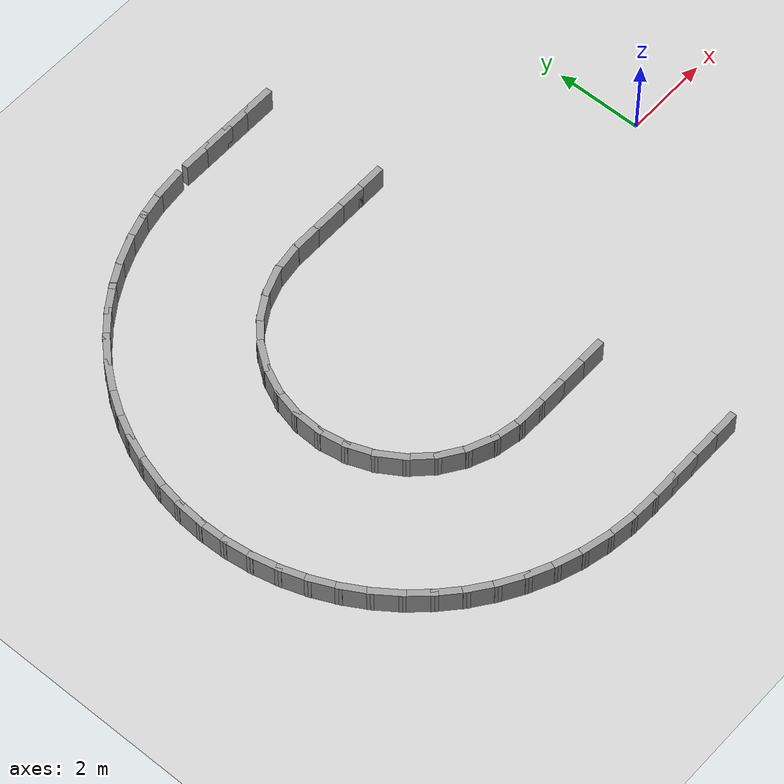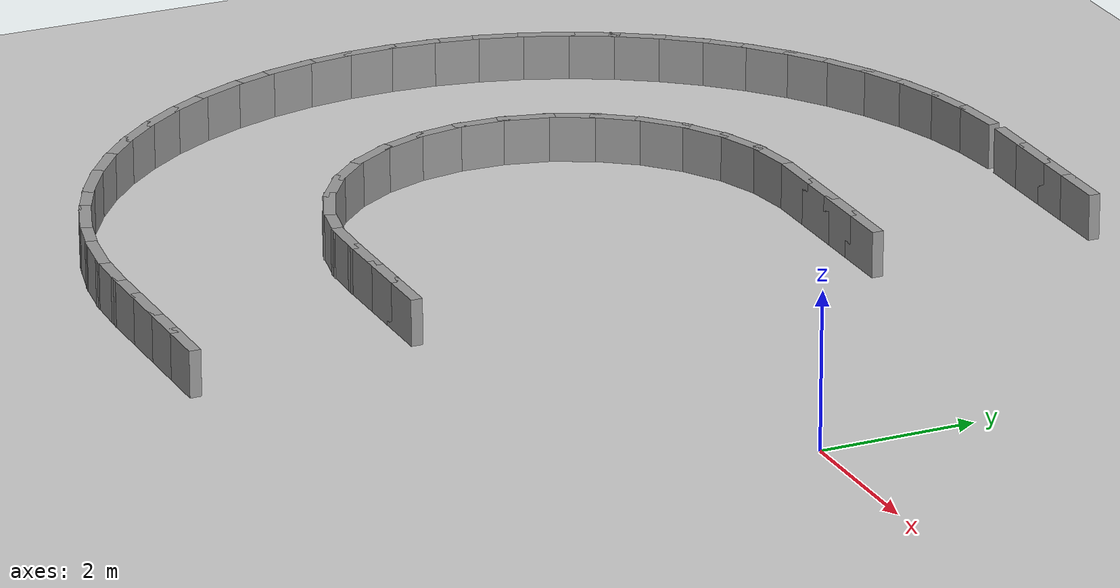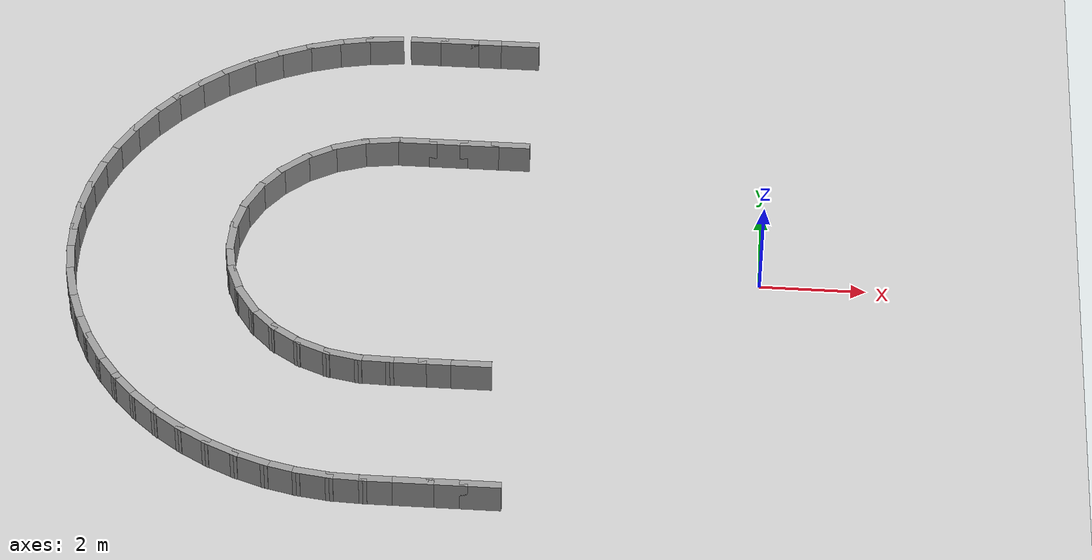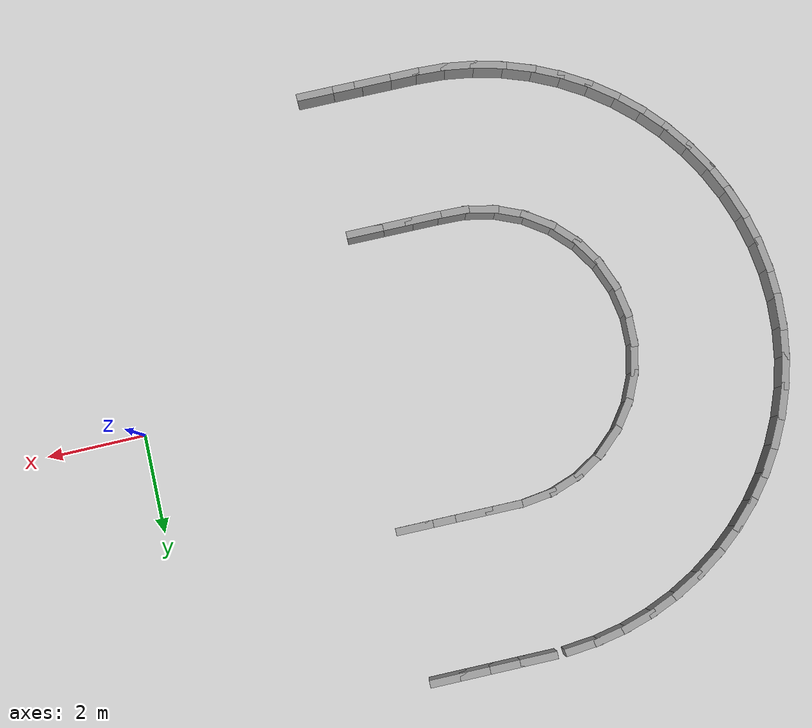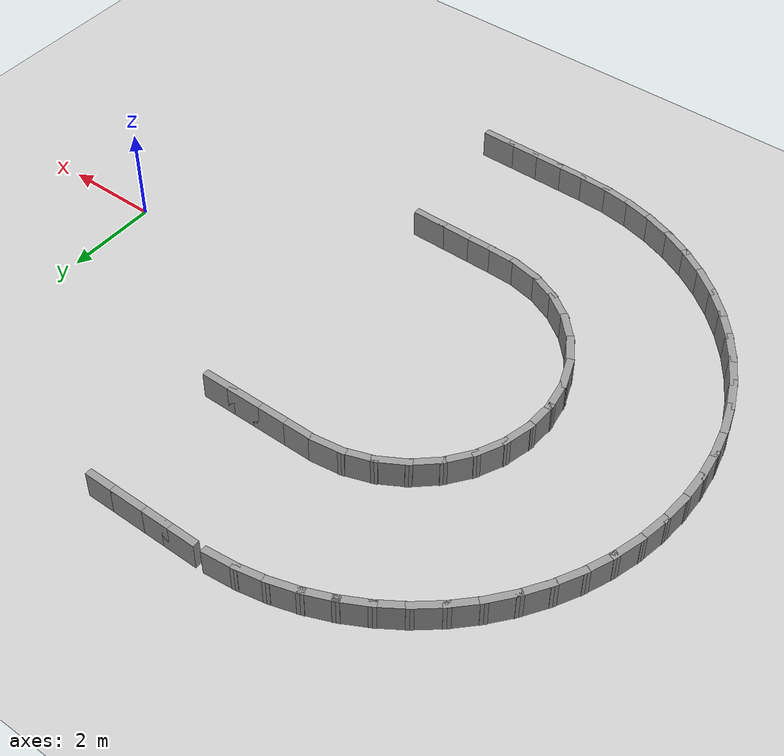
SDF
<sdf version="1.7">
 <world name="default">
  <model name="ground_plane">
   <static>1</static>
   <link name="link">
    <collision name="collision">
     <geometry><plane><normal>0 0 1</normal><size>100 100</size></plane></geometry>
     <surface><friction><ode><mu>100</mu><mu2>50</mu2></ode></friction></surface>
    </collision>
    <visual name="visual">
     <cast_shadows>0</cast_shadows>
     <geometry><plane><normal>0 0 1</normal><size>100 100</size></plane></geometry>
     <material>
      <script><uri>file://media/materials/scripts/gazebo.material</uri><name>Gazebo/Grey</name></script>
     </material>
    </visual>
   </link>
  </model>
  <model name="campus_loop">
   <link name="Wall_0">
    <collision name="Wall_0_Collision">
     <geometry><box><size>0.7500 0.1500 0.6000</size></box></geometry>
     <pose>0 0 0.3000 0 -0 0</pose>
    </collision>
    <visual name="Wall_0_Visual">
     <pose>0 0 0.3000 0 -0 0</pose>
     <geometry><box><size>0.7500 0.1500 0.6000</size></box></geometry>
     <material>
      <script><uri>file://media/materials/scripts/gazebo.material</uri><name>Gazebo/Grey</name></script>
      <ambient>1 1 1 1</ambient>
     </material>
    </visual>
    <pose>-6.7000 6.0000 0 0 -0 0.00000</pose>
   </link>
   <link name="Wall_1">
    <collision name="Wall_1_Collision">
     <geometry><box><size>0.7500 0.1500 0.6000</size></box></geometry>
     <pose>0 0 0.3000 0 -0 0</pose>
    </collision>
    <visual name="Wall_1_Visual">
     <pose>0 0 0.3000 0 -0 0</pose>
     <geometry><box><size>0.7500 0.1500 0.6000</size></box></geometry>
     <material>
      <script><uri>file://media/materials/scripts/gazebo.material</uri><name>Gazebo/Grey</name></script>
      <ambient>1 1 1 1</ambient>
     </material>
    </visual>
    <pose>-6.1000 6.0000 0 0 -0 0.00000</pose>
   </link>
   <link name="Wall_2">
    <collision name="Wall_2_Collision">
     <geometry><box><size>0.7500 0.1500 0.6000</size></box></geometry>
     <pose>0 0 0.3000 0 -0 0</pose>
    </collision>
    <visual name="Wall_2_Visual">
     <pose>0 0 0.3000 0 -0 0</pose>
     <geometry><box><size>0.7500 0.1500 0.6000</size></box></geometry>
     <material>
      <script><uri>file://media/materials/scripts/gazebo.material</uri><name>Gazebo/Grey</name></script>
      <ambient>1 1 1 1</ambient>
     </material>
    </visual>
    <pose>-5.5000 6.0000 0 0 -0 0.00000</pose>
   </link>
   <link name="Wall_3">
    <collision name="Wall_3_Collision">
     <geometry><box><size>0.7500 0.1500 0.6000</size></box></geometry>
     <pose>0 0 0.3000 0 -0 0</pose>
    </collision>
    <visual name="Wall_3_Visual">
     <pose>0 0 0.3000 0 -0 0</pose>
     <geometry><box><size>0.7500 0.1500 0.6000</size></box></geometry>
     <material>
      <script><uri>file://media/materials/scripts/gazebo.material</uri><name>Gazebo/Grey</name></script>
      <ambient>1 1 1 1</ambient>
     </material>
    </visual>
    <pose>-4.9000 6.0000 0 0 -0 0.00000</pose>
   </link>
   <link name="Wall_74">
    <collision name="Wall_74_Collision">
     <geometry><box><size>0.7500 0.1500 0.6000</size></box></geometry>
     <pose>0 0 0.3000 0 -0 0</pose>
    </collision>
    <visual name="Wall_74_Visual">
     <pose>0 0 0.3000 0 -0 0</pose>
     <geometry><box><size>0.7500 0.1500 0.6000</size></box></geometry>
     <material>
      <script><uri>file://media/materials/scripts/gazebo.material</uri><name>Gazebo/Grey</name></script>
      <ambient>1 1 1 1</ambient>
     </material>
    </visual>
    <pose>-4.8506 -6.0000 0 0 -0 3.14159</pose>
   </link>
   <link name="Wall_75">
    <collision name="Wall_75_Collision">
     <geometry><box><size>0.7500 0.1500 0.6000</size></box></geometry>
     <pose>0 0 0.3000 0 -0 0</pose>
    </collision>
    <visual name="Wall_75_Visual">
     <pose>0 0 0.3000 0 -0 0</pose>
     <geometry><box><size>0.7500 0.1500 0.6000</size></box></geometry>
     <material>
      <script><uri>file://media/materials/scripts/gazebo.material</uri><name>Gazebo/Grey</name></script>
      <ambient>1 1 1 1</ambient>
     </material>
    </visual>
    <pose>-5.4506 -6.0000 0 0 -0 3.14159</pose>
   </link>
   <link name="Wall_76">
    <collision name="Wall_76_Collision">
     <geometry><box><size>0.7500 0.1500 0.6000</size></box></geometry>
     <pose>0 0 0.3000 0 -0 0</pose>
    </collision>
    <visual name="Wall_76_Visual">
     <pose>0 0 0.3000 0 -0 0</pose>
     <geometry><box><size>0.7500 0.1500 0.6000</size></box></geometry>
     <material>
      <script><uri>file://media/materials/scripts/gazebo.material</uri><name>Gazebo/Grey</name></script>
      <ambient>1 1 1 1</ambient>
     </material>
    </visual>
    <pose>-6.0506 -6.0000 0 0 -0 3.14159</pose>
   </link>
   <link name="Wall_77">
    <collision name="Wall_77_Collision">
     <geometry><box><size>0.7500 0.1500 0.6000</size></box></geometry>
     <pose>0 0 0.3000 0 -0 0</pose>
    </collision>
    <visual name="Wall_77_Visual">
     <pose>0 0 0.3000 0 -0 0</pose>
     <geometry><box><size>0.7500 0.1500 0.6000</size></box></geometry>
     <material>
      <script><uri>file://media/materials/scripts/gazebo.material</uri><name>Gazebo/Grey</name></script>
      <ambient>1 1 1 1</ambient>
     </material>
    </visual>
    <pose>-6.6506 -6.0000 0 0 -0 3.14159</pose>
   </link>
   <link name="Wall_78">
    <collision name="Wall_78_Collision">
     <geometry><box><size>0.7498 0.1500 0.6000</size></box></geometry>
     <pose>0 0 0.3000 0 -0 0</pose>
    </collision>
    <visual name="Wall_78_Visual">
     <pose>0 0 0.3000 0 -0 0</pose>
     <geometry><box><size>0.7498 0.1500 0.6000</size></box></geometry>
     <material>
      <script><uri>file://media/materials/scripts/gazebo.material</uri><name>Gazebo/Grey</name></script>
      <ambient>1 1 1 1</ambient>
     </material>
    </visual>
    <pose>-7.2503 -5.9873 0 0 -0 3.09929</pose>
   </link>
   <link name="Wall_79">
    <collision name="Wall_79_Collision">
     <geometry><box><size>0.7497 0.1500 0.6000</size></box></geometry>
     <pose>0 0 0.3000 0 -0 0</pose>
    </collision>
    <visual name="Wall_79_Visual">
     <pose>0 0 0.3000 0 -0 0</pose>
     <geometry><box><size>0.7497 0.1500 0.6000</size></box></geometry>
     <material>
      <script><uri>file://media/materials/scripts/gazebo.material</uri><name>Gazebo/Grey</name></script>
      <ambient>1 1 1 1</ambient>
     </material>
    </visual>
    <pose>-7.8467 -5.9323 0 0 -0 2.99985</pose>
   </link>
   <link name="Wall_80">
    <collision name="Wall_80_Collision">
     <geometry><box><size>0.7497 0.1500 0.6000</size></box></geometry>
     <pose>0 0 0.3000 0 -0 0</pose>
    </collision>
    <visual name="Wall_80_Visual">
     <pose>0 0 0.3000 0 -0 0</pose>
     <geometry><box><size>0.7497 0.1500 0.6000</size></box></geometry>
     <material>
      <script><uri>file://media/materials/scripts/gazebo.material</uri><name>Gazebo/Grey</name></script>
      <ambient>1 1 1 1</ambient>
     </material>
    </visual>
    <pose>-8.4347 -5.8181 0 0 -0 2.89966</pose>
   </link>
   <link name="Wall_81">
    <collision name="Wall_81_Collision">
     <geometry><box><size>0.7497 0.1500 0.6000</size></box></geometry>
     <pose>0 0 0.3000 0 -0 0</pose>
    </collision>
    <visual name="Wall_81_Visual">
     <pose>0 0 0.3000 0 -0 0</pose>
     <geometry><box><size>0.7497 0.1500 0.6000</size></box></geometry>
     <material>
      <script><uri>file://media/materials/scripts/gazebo.material</uri><name>Gazebo/Grey</name></script>
      <ambient>1 1 1 1</ambient>
     </material>
    </visual>
    <pose>-9.0084 -5.6458 0 0 -0 2.79994</pose>
   </link>
   <link name="Wall_82">
    <collision name="Wall_82_Collision">
     <geometry><box><size>0.7497 0.1500 0.6000</size></box></geometry>
     <pose>0 0 0.3000 0 -0 0</pose>
    </collision>
    <visual name="Wall_82_Visual">
     <pose>0 0 0.3000 0 -0 0</pose>
     <geometry><box><size>0.7497 0.1500 0.6000</size></box></geometry>
     <material>
      <script><uri>file://media/materials/scripts/gazebo.material</uri><name>Gazebo/Grey</name></script>
      <ambient>1 1 1 1</ambient>
     </material>
    </visual>
    <pose>-9.5620 -5.4171 0 0 -0 2.69984</pose>
   </link>
   <link name="Wall_83">
    <collision name="Wall_83_Collision">
     <geometry><box><size>0.7497 0.1500 0.6000</size></box></geometry>
     <pose>0 0 0.3000 0 -0 0</pose>
    </collision>
    <visual name="Wall_83_Visual">
     <pose>0 0 0.3000 0 -0 0</pose>
     <geometry><box><size>0.7497 0.1500 0.6000</size></box></geometry>
     <material>
      <script><uri>file://media/materials/scripts/gazebo.material</uri><name>Gazebo/Grey</name></script>
      <ambient>1 1 1 1</ambient>
     </material>
    </visual>
    <pose>-10.0900 -5.1342 0 0 -0 2.59966</pose>
   </link>
   <link name="Wall_84">
    <collision name="Wall_84_Collision">
     <geometry><box><size>0.7497 0.1500 0.6000</size></box></geometry>
     <pose>0 0 0.3000 0 -0 0</pose>
    </collision>
    <visual name="Wall_84_Visual">
     <pose>0 0 0.3000 0 -0 0</pose>
     <geometry><box><size>0.7497 0.1500 0.6000</size></box></geometry>
     <material>
      <script><uri>file://media/materials/scripts/gazebo.material</uri><name>Gazebo/Grey</name></script>
      <ambient>1 1 1 1</ambient>
     </material>
    </visual>
    <pose>-10.5872 -4.8001 0 0 -0 2.49994</pose>
   </link>
   <link name="Wall_85">
    <collision name="Wall_85_Collision">
     <geometry><box><size>0.7497 0.1500 0.6000</size></box></geometry>
     <pose>0 0 0.3000 0 -0 0</pose>
    </collision>
    <visual name="Wall_85_Visual">
     <pose>0 0 0.3000 0 -0 0</pose>
     <geometry><box><size>0.7497 0.1500 0.6000</size></box></geometry>
     <material>
      <script><uri>file://media/materials/scripts/gazebo.material</uri><name>Gazebo/Grey</name></script>
      <ambient>1 1 1 1</ambient>
     </material>
    </visual>
    <pose>-11.0485 -4.4180 0 0 -0 2.39983</pose>
   </link>
   <link name="Wall_86">
    <collision name="Wall_86_Collision">
     <geometry><box><size>0.7497 0.1500 0.6000</size></box></geometry>
     <pose>0 0 0.3000 0 -0 0</pose>
    </collision>
    <visual name="Wall_86_Visual">
     <pose>0 0 0.3000 0 -0 0</pose>
     <geometry><box><size>0.7497 0.1500 0.6000</size></box></geometry>
     <material>
      <script><uri>file://media/materials/scripts/gazebo.material</uri><name>Gazebo/Grey</name></script>
      <ambient>1 1 1 1</ambient>
     </material>
    </visual>
    <pose>-11.4693 -3.9917 0 0 -0 2.29966</pose>
   </link>
   <link name="Wall_87">
    <collision name="Wall_87_Collision">
     <geometry><box><size>0.7497 0.1500 0.6000</size></box></geometry>
     <pose>0 0 0.3000 0 -0 0</pose>
    </collision>
    <visual name="Wall_87_Visual">
     <pose>0 0 0.3000 0 -0 0</pose>
     <geometry><box><size>0.7497 0.1500 0.6000</size></box></geometry>
     <material>
      <script><uri>file://media/materials/scripts/gazebo.material</uri><name>Gazebo/Grey</name></script>
      <ambient>1 1 1 1</ambient>
     </material>
    </visual>
    <pose>-11.8455 -3.5256 0 0 -0 2.19994</pose>
   </link>
   <link name="Wall_88">
    <collision name="Wall_88_Collision">
     <geometry><box><size>0.7497 0.1500 0.6000</size></box></geometry>
     <pose>0 0 0.3000 0 -0 0</pose>
    </collision>
    <visual name="Wall_88_Visual">
     <pose>0 0 0.3000 0 -0 0</pose>
     <geometry><box><size>0.7497 0.1500 0.6000</size></box></geometry>
     <material>
      <script><uri>file://media/materials/scripts/gazebo.material</uri><name>Gazebo/Grey</name></script>
      <ambient>1 1 1 1</ambient>
     </material>
    </visual>
    <pose>-12.1733 -3.0242 0 0 -0 2.09982</pose>
   </link>
   <link name="Wall_89">
    <collision name="Wall_89_Collision">
     <geometry><box><size>0.7497 0.1500 0.6000</size></box></geometry>
     <pose>0 0 0.3000 0 -0 0</pose>
    </collision>
    <visual name="Wall_89_Visual">
     <pose>0 0 0.3000 0 -0 0</pose>
     <geometry><box><size>0.7497 0.1500 0.6000</size></box></geometry>
     <material>
      <script><uri>file://media/materials/scripts/gazebo.material</uri><name>Gazebo/Grey</name></script>
      <ambient>1 1 1 1</ambient>
     </material>
    </visual>
    <pose>-12.4493 -2.4927 0 0 -0 1.99966</pose>
   </link>
   <link name="Wall_90">
    <collision name="Wall_90_Collision">
     <geometry><box><size>0.7497 0.1500 0.6000</size></box></geometry>
     <pose>0 0 0.3000 0 -0 0</pose>
    </collision>
    <visual name="Wall_90_Visual">
     <pose>0 0 0.3000 0 -0 0</pose>
     <geometry><box><size>0.7497 0.1500 0.6000</size></box></geometry>
     <material>
      <script><uri>file://media/materials/scripts/gazebo.material</uri><name>Gazebo/Grey</name></script>
      <ambient>1 1 1 1</ambient>
     </material>
    </visual>
    <pose>-12.6709 -1.9362 0 0 -0 1.89994</pose>
   </link>
   <link name="Wall_91">
    <collision name="Wall_91_Collision">
     <geometry><box><size>0.7497 0.1500 0.6000</size></box></geometry>
     <pose>0 0 0.3000 0 -0 0</pose>
    </collision>
    <visual name="Wall_91_Visual">
     <pose>0 0 0.3000 0 -0 0</pose>
     <geometry><box><size>0.7497 0.1500 0.6000</size></box></geometry>
     <material>
      <script><uri>file://media/materials/scripts/gazebo.material</uri><name>Gazebo/Grey</name></script>
      <ambient>1 1 1 1</ambient>
     </material>
    </visual>
    <pose>-12.8359 -1.3603 0 0 -0 1.79982</pose>
   </link>
   <link name="Wall_92">
    <collision name="Wall_92_Collision">
     <geometry><box><size>0.7497 0.1500 0.6000</size></box></geometry>
     <pose>0 0 0.3000 0 -0 0</pose>
    </collision>
    <visual name="Wall_92_Visual">
     <pose>0 0 0.3000 0 -0 0</pose>
     <geometry><box><size>0.7497 0.1500 0.6000</size></box></geometry>
     <material>
      <script><uri>file://media/materials/scripts/gazebo.material</uri><name>Gazebo/Grey</name></script>
      <ambient>1 1 1 1</ambient>
     </material>
    </visual>
    <pose>-12.9426 -0.7709 0 0 -0 1.69966</pose>
   </link>
   <link name="Wall_93">
    <collision name="Wall_93_Collision">
     <geometry><box><size>0.7497 0.1500 0.6000</size></box></geometry>
     <pose>0 0 0.3000 0 -0 0</pose>
    </collision>
    <visual name="Wall_93_Visual">
     <pose>0 0 0.3000 0 -0 0</pose>
     <geometry><box><size>0.7497 0.1500 0.6000</size></box></geometry>
     <material>
      <script><uri>file://media/materials/scripts/gazebo.material</uri><name>Gazebo/Grey</name></script>
      <ambient>1 1 1 1</ambient>
     </material>
    </visual>
    <pose>-12.9898 -0.1738 0 0 -0 1.59994</pose>
   </link>
   <link name="Wall_94">
    <collision name="Wall_94_Collision">
     <geometry><box><size>0.7497 0.1500 0.6000</size></box></geometry>
     <pose>0 0 0.3000 0 -0 0</pose>
    </collision>
    <visual name="Wall_94_Visual">
     <pose>0 0 0.3000 0 -0 0</pose>
     <geometry><box><size>0.7497 0.1500 0.6000</size></box></geometry>
     <material>
      <script><uri>file://media/materials/scripts/gazebo.material</uri><name>Gazebo/Grey</name></script>
      <ambient>1 1 1 1</ambient>
     </material>
    </visual>
    <pose>-12.9773 0.4251 0 0 -0 1.49981</pose>
   </link>
   <link name="Wall_95">
    <collision name="Wall_95_Collision">
     <geometry><box><size>0.7497 0.1500 0.6000</size></box></geometry>
     <pose>0 0 0.3000 0 -0 0</pose>
    </collision>
    <visual name="Wall_95_Visual">
     <pose>0 0 0.3000 0 -0 0</pose>
     <geometry><box><size>0.7497 0.1500 0.6000</size></box></geometry>
     <material>
      <script><uri>file://media/materials/scripts/gazebo.material</uri><name>Gazebo/Grey</name></script>
      <ambient>1 1 1 1</ambient>
     </material>
    </visual>
    <pose>-12.9050 1.0197 0 0 -0 1.39966</pose>
   </link>
   <link name="Wall_96">
    <collision name="Wall_96_Collision">
     <geometry><box><size>0.7497 0.1500 0.6000</size></box></geometry>
     <pose>0 0 0.3000 0 -0 0</pose>
    </collision>
    <visual name="Wall_96_Visual">
     <pose>0 0 0.3000 0 -0 0</pose>
     <geometry><box><size>0.7497 0.1500 0.6000</size></box></geometry>
     <material>
      <script><uri>file://media/materials/scripts/gazebo.material</uri><name>Gazebo/Grey</name></script>
      <ambient>1 1 1 1</ambient>
     </material>
    </visual>
    <pose>-12.7737 1.6041 0 0 -0 1.29994</pose>
   </link>
   <link name="Wall_97">
    <collision name="Wall_97_Collision">
     <geometry><box><size>0.7497 0.1500 0.6000</size></box></geometry>
     <pose>0 0 0.3000 0 -0 0</pose>
    </collision>
    <visual name="Wall_97_Visual">
     <pose>0 0 0.3000 0 -0 0</pose>
     <geometry><box><size>0.7497 0.1500 0.6000</size></box></geometry>
     <material>
      <script><uri>file://media/materials/scripts/gazebo.material</uri><name>Gazebo/Grey</name></script>
      <ambient>1 1 1 1</ambient>
     </material>
    </visual>
    <pose>-12.5847 2.1725 0 0 -0 1.19980</pose>
   </link>
   <link name="Wall_98">
    <collision name="Wall_98_Collision">
     <geometry><box><size>0.7497 0.1500 0.6000</size></box></geometry>
     <pose>0 0 0.3000 0 -0 0</pose>
    </collision>
    <visual name="Wall_98_Visual">
     <pose>0 0 0.3000 0 -0 0</pose>
     <geometry><box><size>0.7497 0.1500 0.6000</size></box></geometry>
     <material>
      <script><uri>file://media/materials/scripts/gazebo.material</uri><name>Gazebo/Grey</name></script>
      <ambient>1 1 1 1</ambient>
     </material>
    </visual>
    <pose>-12.3399 2.7192 0 0 -0 1.09966</pose>
   </link>
   <link name="Wall_99">
    <collision name="Wall_99_Collision">
     <geometry><box><size>0.7497 0.1500 0.6000</size></box></geometry>
     <pose>0 0 0.3000 0 -0 0</pose>
    </collision>
    <visual name="Wall_99_Visual">
     <pose>0 0 0.3000 0 -0 0</pose>
     <geometry><box><size>0.7497 0.1500 0.6000</size></box></geometry>
     <material>
      <script><uri>file://media/materials/scripts/gazebo.material</uri><name>Gazebo/Grey</name></script>
      <ambient>1 1 1 1</ambient>
     </material>
    </visual>
    <pose>-12.0417 3.2387 0 0 -0 0.99994</pose>
   </link>
   <link name="Wall_100">
    <collision name="Wall_100_Collision">
     <geometry><box><size>0.7497 0.1500 0.6000</size></box></geometry>
     <pose>0 0 0.3000 0 -0 0</pose>
    </collision>
    <visual name="Wall_100_Visual">
     <pose>0 0 0.3000 0 -0 0</pose>
     <geometry><box><size>0.7497 0.1500 0.6000</size></box></geometry>
     <material>
      <script><uri>file://media/materials/scripts/gazebo.material</uri><name>Gazebo/Grey</name></script>
      <ambient>1 1 1 1</ambient>
     </material>
    </visual>
    <pose>-11.6932 3.7259 0 0 -0 0.89979</pose>
   </link>
   <link name="Wall_101">
    <collision name="Wall_101_Collision">
     <geometry><box><size>0.7497 0.1500 0.6000</size></box></geometry>
     <pose>0 0 0.3000 0 -0 0</pose>
    </collision>
    <visual name="Wall_101_Visual">
     <pose>0 0 0.3000 0 -0 0</pose>
     <geometry><box><size>0.7497 0.1500 0.6000</size></box></geometry>
     <material>
      <script><uri>file://media/materials/scripts/gazebo.material</uri><name>Gazebo/Grey</name></script>
      <ambient>1 1 1 1</ambient>
     </material>
    </visual>
    <pose>-11.2978 4.1758 0 0 -0 0.79966</pose>
   </link>
   <link name="Wall_102">
    <collision name="Wall_102_Collision">
     <geometry><box><size>0.7497 0.1500 0.6000</size></box></geometry>
     <pose>0 0 0.3000 0 -0 0</pose>
    </collision>
    <visual name="Wall_102_Visual">
     <pose>0 0 0.3000 0 -0 0</pose>
     <geometry><box><size>0.7497 0.1500 0.6000</size></box></geometry>
     <material>
      <script><uri>file://media/materials/scripts/gazebo.material</uri><name>Gazebo/Grey</name></script>
      <ambient>1 1 1 1</ambient>
     </material>
    </visual>
    <pose>-10.8594 4.5840 0 0 -0 0.69994</pose>
   </link>
   <link name="Wall_103">
    <collision name="Wall_103_Collision">
     <geometry><box><size>0.7497 0.1500 0.6000</size></box></geometry>
     <pose>0 0 0.3000 0 -0 0</pose>
    </collision>
    <visual name="Wall_103_Visual">
     <pose>0 0 0.3000 0 -0 0</pose>
     <geometry><box><size>0.7497 0.1500 0.6000</size></box></geometry>
     <material>
      <script><uri>file://media/materials/scripts/gazebo.material</uri><name>Gazebo/Grey</name></script>
      <ambient>1 1 1 1</ambient>
     </material>
    </visual>
    <pose>-10.3825 4.9464 0 0 -0 0.59978</pose>
   </link>
   <link name="Wall_104">
    <collision name="Wall_104_Collision">
     <geometry><box><size>0.7497 0.1500 0.6000</size></box></geometry>
     <pose>0 0 0.3000 0 -0 0</pose>
    </collision>
    <visual name="Wall_104_Visual">
     <pose>0 0 0.3000 0 -0 0</pose>
     <geometry><box><size>0.7497 0.1500 0.6000</size></box></geometry>
     <material>
      <script><uri>file://media/materials/scripts/gazebo.material</uri><name>Gazebo/Grey</name></script>
      <ambient>1 1 1 1</ambient>
     </material>
    </visual>
    <pose>-9.8718 5.2594 0 0 -0 0.49966</pose>
   </link>
   <link name="Wall_105">
    <collision name="Wall_105_Collision">
     <geometry><box><size>0.7497 0.1500 0.6000</size></box></geometry>
     <pose>0 0 0.3000 0 -0 0</pose>
    </collision>
    <visual name="Wall_105_Visual">
     <pose>0 0 0.3000 0 -0 0</pose>
     <geometry><box><size>0.7497 0.1500 0.6000</size></box></geometry>
     <material>
      <script><uri>file://media/materials/scripts/gazebo.material</uri><name>Gazebo/Grey</name></script>
      <ambient>1 1 1 1</ambient>
     </material>
    </visual>
    <pose>-9.3324 5.5198 0 0 -0 0.39994</pose>
   </link>
   <link name="Wall_106">
    <collision name="Wall_106_Collision">
     <geometry><box><size>0.7497 0.1500 0.6000</size></box></geometry>
     <pose>0 0 0.3000 0 -0 0</pose>
    </collision>
    <visual name="Wall_106_Visual">
     <pose>0 0 0.3000 0 -0 0</pose>
     <geometry><box><size>0.7497 0.1500 0.6000</size></box></geometry>
     <material>
      <script><uri>file://media/materials/scripts/gazebo.material</uri><name>Gazebo/Grey</name></script>
      <ambient>1 1 1 1</ambient>
     </material>
    </visual>
    <pose>-8.7697 5.7251 0 0 -0 0.29977</pose>
   </link>
   <link name="Wall_107">
    <collision name="Wall_107_Collision">
     <geometry><box><size>0.7497 0.1500 0.6000</size></box></geometry>
     <pose>0 0 0.3000 0 -0 0</pose>
    </collision>
    <visual name="Wall_107_Visual">
     <pose>0 0 0.3000 0 -0 0</pose>
     <geometry><box><size>0.7497 0.1500 0.6000</size></box></geometry>
     <material>
      <script><uri>file://media/materials/scripts/gazebo.material</uri><name>Gazebo/Grey</name></script>
      <ambient>1 1 1 1</ambient>
     </material>
    </visual>
    <pose>-8.1893 5.8732 0 0 -0 0.19966</pose>
   </link>
   <link name="Wall_108">
    <collision name="Wall_108_Collision">
     <geometry><box><size>0.7497 0.1500 0.6000</size></box></geometry>
     <pose>0 0 0.3000 0 -0 0</pose>
    </collision>
    <visual name="Wall_108_Visual">
     <pose>0 0 0.3000 0 -0 0</pose>
     <geometry><box><size>0.7497 0.1500 0.6000</size></box></geometry>
     <material>
      <script><uri>file://media/materials/scripts/gazebo.material</uri><name>Gazebo/Grey</name></script>
      <ambient>1 1 1 1</ambient>
     </material>
    </visual>
    <pose>-7.5970 5.9625 0 0 -0 0.09994</pose>
   </link>
   <link name="Wall_109">
    <collision name="Wall_109_Collision">
     <geometry><box><size>0.7500 0.1500 0.6000</size></box></geometry>
     <pose>0 0 0.3000 0 -0 0</pose>
    </collision>
    <visual name="Wall_109_Visual">
     <pose>0 0 0.3000 0 -0 0</pose>
     <geometry><box><size>0.7500 0.1500 0.6000</size></box></geometry>
     <material>
      <script><uri>file://media/materials/scripts/gazebo.material</uri><name>Gazebo/Grey</name></script>
      <ambient>1 1 1 1</ambient>
     </material>
    </visual>
    <pose>-6.7000 3.0000 0 0 -0 0.00000</pose>
   </link>
   <link name="Wall_110">
    <collision name="Wall_110_Collision">
     <geometry><box><size>0.7500 0.1500 0.6000</size></box></geometry>
     <pose>0 0 0.3000 0 -0 0</pose>
    </collision>
    <visual name="Wall_110_Visual">
     <pose>0 0 0.3000 0 -0 0</pose>
     <geometry><box><size>0.7500 0.1500 0.6000</size></box></geometry>
     <material>
      <script><uri>file://media/materials/scripts/gazebo.material</uri><name>Gazebo/Grey</name></script>
      <ambient>1 1 1 1</ambient>
     </material>
    </visual>
    <pose>-6.1000 3.0000 0 0 -0 0.00000</pose>
   </link>
   <link name="Wall_111">
    <collision name="Wall_111_Collision">
     <geometry><box><size>0.7500 0.1500 0.6000</size></box></geometry>
     <pose>0 0 0.3000 0 -0 0</pose>
    </collision>
    <visual name="Wall_111_Visual">
     <pose>0 0 0.3000 0 -0 0</pose>
     <geometry><box><size>0.7500 0.1500 0.6000</size></box></geometry>
     <material>
      <script><uri>file://media/materials/scripts/gazebo.material</uri><name>Gazebo/Grey</name></script>
      <ambient>1 1 1 1</ambient>
     </material>
    </visual>
    <pose>-5.5000 3.0000 0 0 -0 0.00000</pose>
   </link>
   <link name="Wall_112">
    <collision name="Wall_112_Collision">
     <geometry><box><size>0.7500 0.1500 0.6000</size></box></geometry>
     <pose>0 0 0.3000 0 -0 0</pose>
    </collision>
    <visual name="Wall_112_Visual">
     <pose>0 0 0.3000 0 -0 0</pose>
     <geometry><box><size>0.7500 0.1500 0.6000</size></box></geometry>
     <material>
      <script><uri>file://media/materials/scripts/gazebo.material</uri><name>Gazebo/Grey</name></script>
      <ambient>1 1 1 1</ambient>
     </material>
    </visual>
    <pose>-4.9000 3.0000 0 0 -0 0.00000</pose>
   </link>
   <link name="Wall_168">
    <collision name="Wall_168_Collision">
     <geometry><box><size>0.7500 0.1500 0.6000</size></box></geometry>
     <pose>0 0 0.3000 0 -0 0</pose>
    </collision>
    <visual name="Wall_168_Visual">
     <pose>0 0 0.3000 0 -0 0</pose>
     <geometry><box><size>0.7500 0.1500 0.6000</size></box></geometry>
     <material>
      <script><uri>file://media/materials/scripts/gazebo.material</uri><name>Gazebo/Grey</name></script>
      <ambient>1 1 1 1</ambient>
     </material>
    </visual>
    <pose>-5.2280 -3.0000 0 0 -0 3.14159</pose>
   </link>
   <link name="Wall_169">
    <collision name="Wall_169_Collision">
     <geometry><box><size>0.7500 0.1500 0.6000</size></box></geometry>
     <pose>0 0 0.3000 0 -0 0</pose>
    </collision>
    <visual name="Wall_169_Visual">
     <pose>0 0 0.3000 0 -0 0</pose>
     <geometry><box><size>0.7500 0.1500 0.6000</size></box></geometry>
     <material>
      <script><uri>file://media/materials/scripts/gazebo.material</uri><name>Gazebo/Grey</name></script>
      <ambient>1 1 1 1</ambient>
     </material>
    </visual>
    <pose>-5.8280 -3.0000 0 0 -0 3.14159</pose>
   </link>
   <link name="Wall_170">
    <collision name="Wall_170_Collision">
     <geometry><box><size>0.7500 0.1500 0.6000</size></box></geometry>
     <pose>0 0 0.3000 0 -0 0</pose>
    </collision>
    <visual name="Wall_170_Visual">
     <pose>0 0 0.3000 0 -0 0</pose>
     <geometry><box><size>0.7500 0.1500 0.6000</size></box></geometry>
     <material>
      <script><uri>file://media/materials/scripts/gazebo.material</uri><name>Gazebo/Grey</name></script>
      <ambient>1 1 1 1</ambient>
     </material>
    </visual>
    <pose>-6.4280 -3.0000 0 0 -0 3.14159</pose>
   </link>
   <link name="Wall_171">
    <collision name="Wall_171_Collision">
     <geometry><box><size>0.7260 0.1500 0.6000</size></box></geometry>
     <pose>0 0 0.3000 0 -0 0</pose>
    </collision>
    <visual name="Wall_171_Visual">
     <pose>0 0 0.3000 0 -0 0</pose>
     <geometry><box><size>0.7260 0.1500 0.6000</size></box></geometry>
     <material>
      <script><uri>file://media/materials/scripts/gazebo.material</uri><name>Gazebo/Grey</name></script>
      <ambient>1 1 1 1</ambient>
     </material>
    </visual>
    <pose>-7.0159 -2.9922 0 0 -0 3.11466</pose>
   </link>
   <link name="Wall_172">
    <collision name="Wall_172_Collision">
     <geometry><box><size>0.7490 0.1500 0.6000</size></box></geometry>
     <pose>0 0 0.3000 0 -0 0</pose>
    </collision>
    <visual name="Wall_172_Visual">
     <pose>0 0 0.3000 0 -0 0</pose>
     <geometry><box><size>0.7490 0.1500 0.6000</size></box></geometry>
     <material>
      <script><uri>file://media/materials/scripts/gazebo.material</uri><name>Gazebo/Grey</name></script>
      <ambient>1 1 1 1</ambient>
     </material>
    </visual>
    <pose>-7.5972 -2.9246 0 0 -0 2.94026</pose>
   </link>
   <link name="Wall_173">
    <collision name="Wall_173_Collision">
     <geometry><box><size>0.7490 0.1500 0.6000</size></box></geometry>
     <pose>0 0 0.3000 0 -0 0</pose>
    </collision>
    <visual name="Wall_173_Visual">
     <pose>0 0 0.3000 0 -0 0</pose>
     <geometry><box><size>0.7490 0.1500 0.6000</size></box></geometry>
     <material>
      <script><uri>file://media/materials/scripts/gazebo.material</uri><name>Gazebo/Grey</name></script>
      <ambient>1 1 1 1</ambient>
     </material>
    </visual>
    <pose>-8.1663 -2.7477 0 0 -0 2.74010</pose>
   </link>
   <link name="Wall_174">
    <collision name="Wall_174_Collision">
     <geometry><box><size>0.7490 0.1500 0.6000</size></box></geometry>
     <pose>0 0 0.3000 0 -0 0</pose>
    </collision>
    <visual name="Wall_174_Visual">
     <pose>0 0 0.3000 0 -0 0</pose>
     <geometry><box><size>0.7490 0.1500 0.6000</size></box></geometry>
     <material>
      <script><uri>file://media/materials/scripts/gazebo.material</uri><name>Gazebo/Grey</name></script>
      <ambient>1 1 1 1</ambient>
     </material>
    </visual>
    <pose>-8.6889 -2.4612 0 0 -0 2.54012</pose>
   </link>
   <link name="Wall_175">
    <collision name="Wall_175_Collision">
     <geometry><box><size>0.7490 0.1500 0.6000</size></box></geometry>
     <pose>0 0 0.3000 0 -0 0</pose>
    </collision>
    <visual name="Wall_175_Visual">
     <pose>0 0 0.3000 0 -0 0</pose>
     <geometry><box><size>0.7490 0.1500 0.6000</size></box></geometry>
     <material>
      <script><uri>file://media/materials/scripts/gazebo.material</uri><name>Gazebo/Grey</name></script>
      <ambient>1 1 1 1</ambient>
     </material>
    </visual>
    <pose>-9.1443 -2.0766 0 0 -0 2.34025</pose>
   </link>
   <link name="Wall_176">
    <collision name="Wall_176_Collision">
     <geometry><box><size>0.7490 0.1500 0.6000</size></box></geometry>
     <pose>0 0 0.3000 0 -0 0</pose>
    </collision>
    <visual name="Wall_176_Visual">
     <pose>0 0 0.3000 0 -0 0</pose>
     <geometry><box><size>0.7490 0.1500 0.6000</size></box></geometry>
     <material>
      <script><uri>file://media/materials/scripts/gazebo.material</uri><name>Gazebo/Grey</name></script>
      <ambient>1 1 1 1</ambient>
     </material>
    </visual>
    <pose>-9.5141 -1.6092 0 0 -0 2.14010</pose>
   </link>
   <link name="Wall_177">
    <collision name="Wall_177_Collision">
     <geometry><box><size>0.7490 0.1500 0.6000</size></box></geometry>
     <pose>0 0 0.3000 0 -0 0</pose>
    </collision>
    <visual name="Wall_177_Visual">
     <pose>0 0 0.3000 0 -0 0</pose>
     <geometry><box><size>0.7490 0.1500 0.6000</size></box></geometry>
     <material>
      <script><uri>file://media/materials/scripts/gazebo.material</uri><name>Gazebo/Grey</name></script>
      <ambient>1 1 1 1</ambient>
     </material>
    </visual>
    <pose>-9.7836 -1.0776 0 0 -0 1.94011</pose>
   </link>
   <link name="Wall_178">
    <collision name="Wall_178_Collision">
     <geometry><box><size>0.7490 0.1500 0.6000</size></box></geometry>
     <pose>0 0 0.3000 0 -0 0</pose>
    </collision>
    <visual name="Wall_178_Visual">
     <pose>0 0 0.3000 0 -0 0</pose>
     <geometry><box><size>0.7490 0.1500 0.6000</size></box></geometry>
     <material>
      <script><uri>file://media/materials/scripts/gazebo.material</uri><name>Gazebo/Grey</name></script>
      <ambient>1 1 1 1</ambient>
     </material>
    </visual>
    <pose>-9.9422 -0.5031 0 0 -0 1.74025</pose>
   </link>
   <link name="Wall_179">
    <collision name="Wall_179_Collision">
     <geometry><box><size>0.7490 0.1500 0.6000</size></box></geometry>
     <pose>0 0 0.3000 0 -0 0</pose>
    </collision>
    <visual name="Wall_179_Visual">
     <pose>0 0 0.3000 0 -0 0</pose>
     <geometry><box><size>0.7490 0.1500 0.6000</size></box></geometry>
     <material>
      <script><uri>file://media/materials/scripts/gazebo.material</uri><name>Gazebo/Grey</name></script>
      <ambient>1 1 1 1</ambient>
     </material>
    </visual>
    <pose>-9.9836 0.0915 0 0 -0 1.54010</pose>
   </link>
   <link name="Wall_180">
    <collision name="Wall_180_Collision">
     <geometry><box><size>0.7490 0.1500 0.6000</size></box></geometry>
     <pose>0 0 0.3000 0 -0 0</pose>
    </collision>
    <visual name="Wall_180_Visual">
     <pose>0 0 0.3000 0 -0 0</pose>
     <geometry><box><size>0.7490 0.1500 0.6000</size></box></geometry>
     <material>
      <script><uri>file://media/materials/scripts/gazebo.material</uri><name>Gazebo/Grey</name></script>
      <ambient>1 1 1 1</ambient>
     </material>
    </visual>
    <pose>-9.9059 0.6824 0 0 -0 1.34010</pose>
   </link>
   <link name="Wall_181">
    <collision name="Wall_181_Collision">
     <geometry><box><size>0.7490 0.1500 0.6000</size></box></geometry>
     <pose>0 0 0.3000 0 -0 0</pose>
    </collision>
    <visual name="Wall_181_Visual">
     <pose>0 0 0.3000 0 -0 0</pose>
     <geometry><box><size>0.7490 0.1500 0.6000</size></box></geometry>
     <material>
      <script><uri>file://media/materials/scripts/gazebo.material</uri><name>Gazebo/Grey</name></script>
      <ambient>1 1 1 1</ambient>
     </material>
    </visual>
    <pose>-9.7124 1.2461 0 0 -0 1.14024</pose>
   </link>
   <link name="Wall_182">
    <collision name="Wall_182_Collision">
     <geometry><box><size>0.7490 0.1500 0.6000</size></box></geometry>
     <pose>0 0 0.3000 0 -0 0</pose>
    </collision>
    <visual name="Wall_182_Visual">
     <pose>0 0 0.3000 0 -0 0</pose>
     <geometry><box><size>0.7490 0.1500 0.6000</size></box></geometry>
     <material>
      <script><uri>file://media/materials/scripts/gazebo.material</uri><name>Gazebo/Grey</name></script>
      <ambient>1 1 1 1</ambient>
     </material>
    </visual>
    <pose>-9.4108 1.7601 0 0 -0 0.94010</pose>
   </link>
   <link name="Wall_183">
    <collision name="Wall_183_Collision">
     <geometry><box><size>0.7490 0.1500 0.6000</size></box></geometry>
     <pose>0 0 0.3000 0 -0 0</pose>
    </collision>
    <visual name="Wall_183_Visual">
     <pose>0 0 0.3000 0 -0 0</pose>
     <geometry><box><size>0.7490 0.1500 0.6000</size></box></geometry>
     <material>
      <script><uri>file://media/materials/scripts/gazebo.material</uri><name>Gazebo/Grey</name></script>
      <ambient>1 1 1 1</ambient>
     </material>
    </visual>
    <pose>-9.0130 2.2040 0 0 -0 0.74009</pose>
   </link>
   <link name="Wall_184">
    <collision name="Wall_184_Collision">
     <geometry><box><size>0.7490 0.1500 0.6000</size></box></geometry>
     <pose>0 0 0.3000 0 -0 0</pose>
    </collision>
    <visual name="Wall_184_Visual">
     <pose>0 0 0.3000 0 -0 0</pose>
     <geometry><box><size>0.7490 0.1500 0.6000</size></box></geometry>
     <material>
      <script><uri>file://media/materials/scripts/gazebo.material</uri><name>Gazebo/Grey</name></script>
      <ambient>1 1 1 1</ambient>
     </material>
    </visual>
    <pose>-8.5350 2.5600 0 0 -0 0.54023</pose>
   </link>
   <link name="Wall_185">
    <collision name="Wall_185_Collision">
     <geometry><box><size>0.7490 0.1500 0.6000</size></box></geometry>
     <pose>0 0 0.3000 0 -0 0</pose>
    </collision>
    <visual name="Wall_185_Visual">
     <pose>0 0 0.3000 0 -0 0</pose>
     <geometry><box><size>0.7490 0.1500 0.6000</size></box></geometry>
     <material>
      <script><uri>file://media/materials/scripts/gazebo.material</uri><name>Gazebo/Grey</name></script>
      <ambient>1 1 1 1</ambient>
     </material>
    </visual>
    <pose>-7.9958 2.8139 0 0 -0 0.34010</pose>
   </link>
   <link name="Wall_186">
    <collision name="Wall_186_Collision">
     <geometry><box><size>0.7490 0.1500 0.6000</size></box></geometry>
     <pose>0 0 0.3000 0 -0 0</pose>
    </collision>
    <visual name="Wall_186_Visual">
     <pose>0 0 0.3000 0 -0 0</pose>
     <geometry><box><size>0.7490 0.1500 0.6000</size></box></geometry>
     <material>
      <script><uri>file://media/materials/scripts/gazebo.material</uri><name>Gazebo/Grey</name></script>
      <ambient>1 1 1 1</ambient>
     </material>
    </visual>
    <pose>-7.4169 2.9557 0 0 -0 0.14008</pose>
   </link>
   <static>1</static>
  </model>
 </world>
</sdf>
